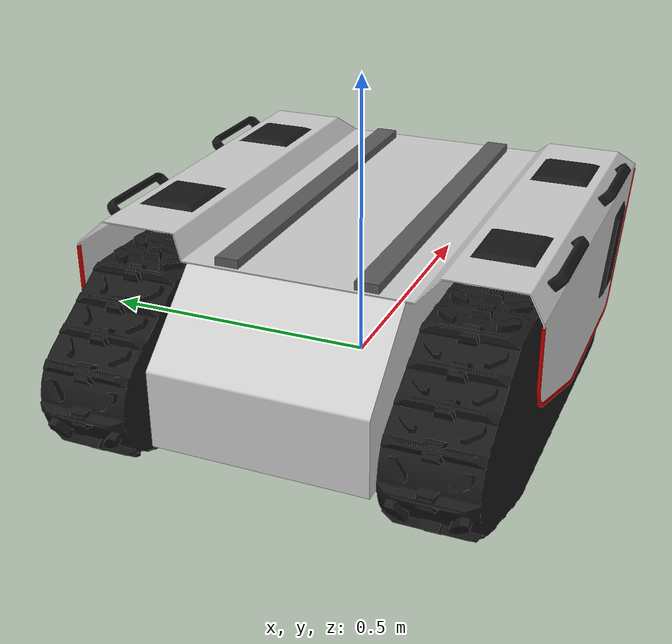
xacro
<?xml version="1.0"?>
<robot name="bunker" xmlns:xacro="http://www.ros.org/wiki/xacro">
  <link name="base_link">
    <visual>
      <geometry>
        <mesh filename="package://bunker_description/meshes/Bunker_Tracks.dae"/>
      </geometry>
    </visual>
  </link>

  <joint name="base_link_joint" type="fixed">
    <origin xyz="0 0 0" rpy="0 0 0" />
    <parent link="base_link"/>
    <child link="chassis_link" />
  </joint>

  <link name="chassis_link">
    <visual>
      <geometry>
        <mesh filename="package://bunker_description/meshes/Bunker_Body.dae"/>
      </geometry>
    </visual>
  </link>

  <joint name="mid_mount_joint" type="fixed">
    <origin xyz="0.07836 0 0.2678" rpy="0 0 0"/>
    <parent link="chassis_link" />
    <child link="mid_mount_link" />
  </joint>

  <link name="mid_mount_link">
    <visual>
      <geometry>
        <mesh filename="package://bunker_description/meshes/Bunker_Cover.dae"/>
      </geometry>
    </visual>
    <collision>
      <geometry>
        <mesh filename="package://bunker_description/meshes/Bunker_Collision.stl"/>
      </geometry>
    </collision>
  </link>

  <joint name="front_mount_joint" type="fixed">
    <origin xyz="0.345 0 0" rpy="0 0 0"/>
    <parent link="mid_mount_link" />
    <child link="front_mount_link" />
  </joint>

  <joint name="rear_mount_joint" type="fixed">
    <origin xyz="-0.345 0 0" rpy="0 0 0"/>
    <parent link="mid_mount_link" />
    <child link="rear_mount_link" />
  </joint>

  <link name="front_mount_link" />
  <link name="rear_mount_link" />
</robot>
